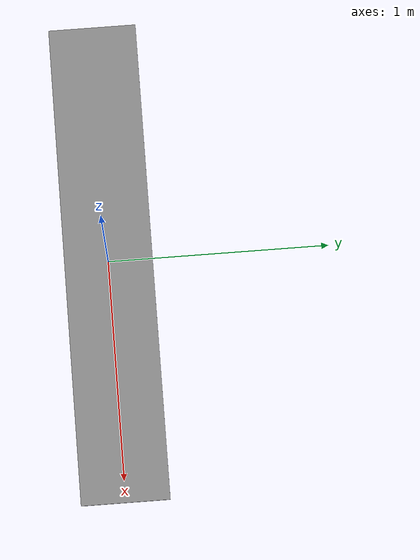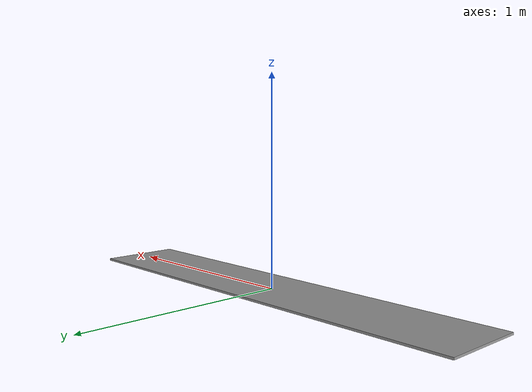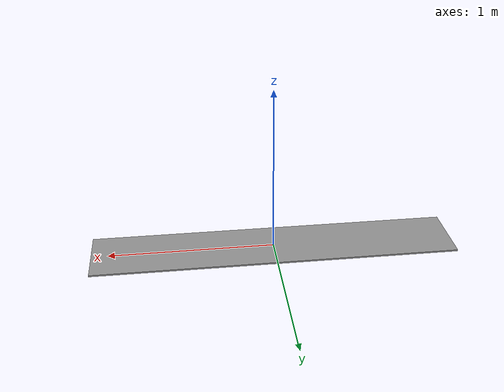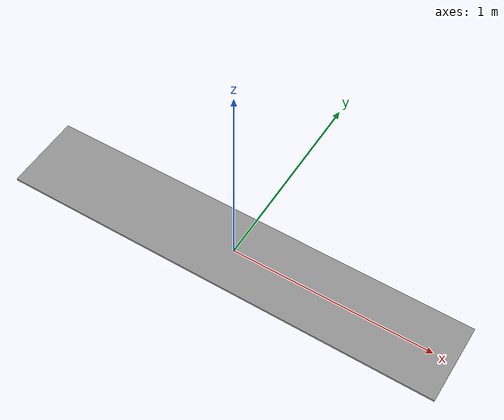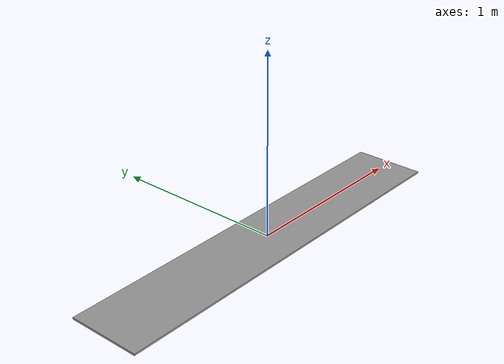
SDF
<?xml version="1.0"?>
<sdf version="1.6">
  <model name="path">
    <link name="link">
      <collision name="collision">
        <geometry>
          <box>
            <size>2.2 0.4 0.01</size>  <!-- 长、宽、薄厚（单位：米） -->
          </box>
        </geometry>
      </collision>
      <visual name="visual">
        <geometry>
          <box>
            <size>2.2 0.4 0.01</size>
          </box>
        </geometry>
        <material>
          <script>
            <name>Gazebo/Grey</name>
            <uri>model://materials/scripts/gazebo.material</uri>
          </script>
        </material>
      </visual>
    </link>
  </model>
</sdf>
